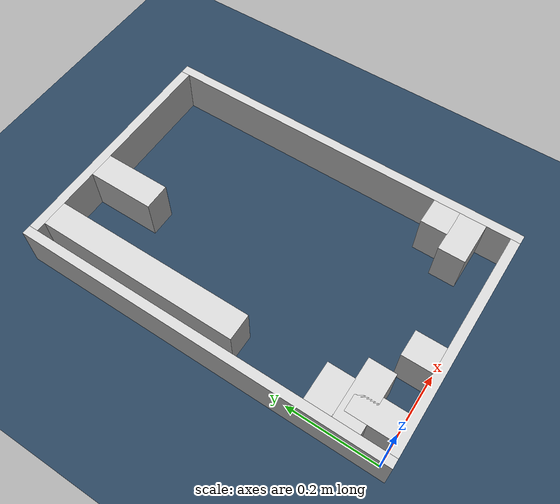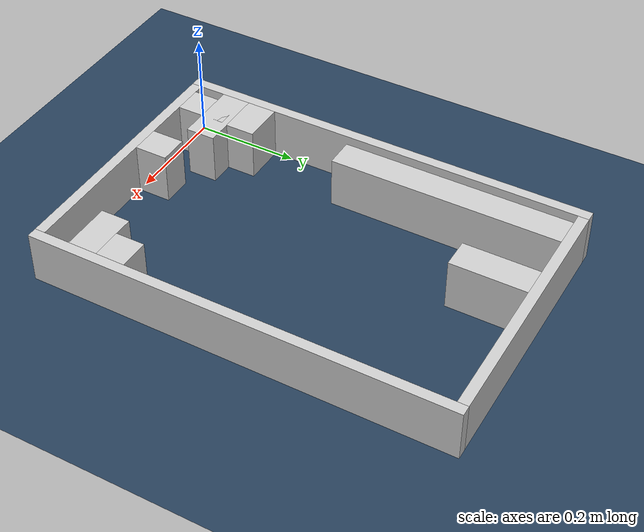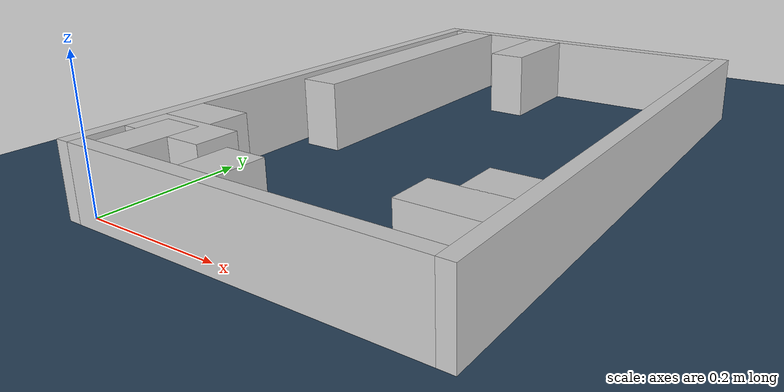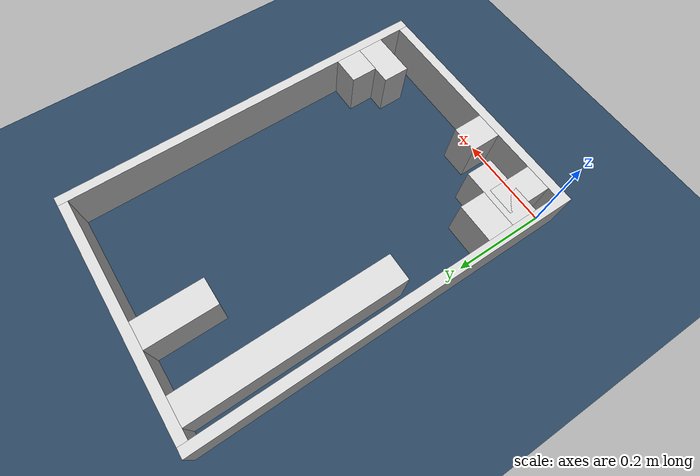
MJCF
<?xml version="1.0" ?>
<mujoco model="generated_real_template">
  <compiler angle="degree"/>
  <option timestep="0.002" integrator="implicitfast" iterations="100" cone="elliptic"/>
  <default>
    <geom density="1"/>
  </default>
  <asset>
    <texture builtin="gradient" height="3072" rgb1="0.3 0.5 0.7" rgb2="0 0 0" type="skybox" width="512"/>
    <texture builtin="checker" height="300" mark="edge" markrgb="0.8 0.8 0.8" name="groundplane" rgb1="0.2 0.3 0.4" rgb2="0.1 0.2 0.3" type="2d" width="300"/>
    <material name="groundplane" reflectance="0.2" texrepeat="5 5" texture="groundplane" texuniform="true"/>
  </asset>
  <worldbody>
    <light dir="0 0 -1" directional="true" pos="0 0 1.5"/>
    <geom name="floor" type="plane" condim="4" friction="0.5 0.005 0.001" material="groundplane" size="0 0 0.05"/>
    <body name="walls">
      <geom name="wall_boundary_left" type="box" condim="4" friction="1.0 0.005 0.0001" rgba="0.8 0.8 0.8 1" pos="-0.010000 0.387500 0.050000" euler="0 0 0.000000" size="0.010000 0.407500 0.050000"/>
      <geom name="wall_boundary_right" type="box" condim="4" friction="1.0 0.005 0.0001" rgba="0.8 0.8 0.8 1" pos="0.500000 0.387500 0.050000" euler="0 0 0.000000" size="0.010000 0.407500 0.050000"/>
      <geom name="wall_boundary_bottom" type="box" condim="4" friction="1.0 0.005 0.0001" rgba="0.8 0.8 0.8 1" pos="0.245000 -0.010000 0.050000" euler="0 0 0.000000" size="0.245000 0.010000 0.050000"/>
      <geom name="wall_boundary_top" type="box" condim="4" friction="1.0 0.005 0.0001" rgba="0.8 0.8 0.8 1" pos="0.245000 0.785000 0.050000" euler="0 0 0.000000" size="0.245000 0.010000 0.050000"/>
      <geom name="wall_inner_1_1" type="box" condim="4" friction="1.0 0.005 0.0001" rgba="0.8 0.8 0.8 1" pos="0.048870 0.047900 0.050000" euler="0 0 90.000000" size="0.047900 0.028500 0.050000"/>
      <geom name="wall_inner_1_2" type="box" condim="4" friction="1.0 0.005 0.0001" rgba="0.8 0.8 0.8 1" pos="0.048870 0.552635 0.050000" euler="0 0 90.000000" size="0.222365 0.028500 0.050000"/>
      <geom name="wall_inner_2_1" type="box" condim="4" friction="1.0 0.005 0.0001" rgba="0.8 0.8 0.8 1" pos="0.190758 0.031866 0.050000" euler="0 0 90.000000" size="0.031866 0.028500 0.050000"/>
      <geom name="wall_inner_2_2" type="box" condim="4" friction="1.0 0.005 0.0001" rgba="0.8 0.8 0.8 1" pos="0.190758 0.702712 0.050000" euler="0 0 90.000000" size="0.072288 0.028500 0.050000"/>
      <geom name="wall_inner_3_1" type="box" condim="4" friction="1.0 0.005 0.0001" rgba="0.8 0.8 0.8 1" pos="0.063702 0.079612 0.050000" euler="0 0 0.000000" size="0.063702 0.028500 0.050000"/>
      <geom name="wall_inner_3_2" type="box" condim="4" friction="1.0 0.005 0.0001" rgba="0.8 0.8 0.8 1" pos="0.442144 0.079612 0.050000" euler="0 0 0.000000" size="0.047856 0.028500 0.050000"/>
      <geom name="wall_inner_4_1" type="box" condim="4" friction="1.0 0.005 0.0001" rgba="0.8 0.8 0.8 1" pos="0.040341 0.135955 0.050000" euler="0 0 0.000000" size="0.040341 0.028500 0.050000"/>
      <geom name="wall_inner_4_2" type="box" condim="4" friction="1.0 0.005 0.0001" rgba="0.8 0.8 0.8 1" pos="0.460470 0.135955 0.050000" euler="0 0 0.000000" size="0.029530 0.028500 0.050000"/>
    </body>
  </worldbody>
</mujoco>
